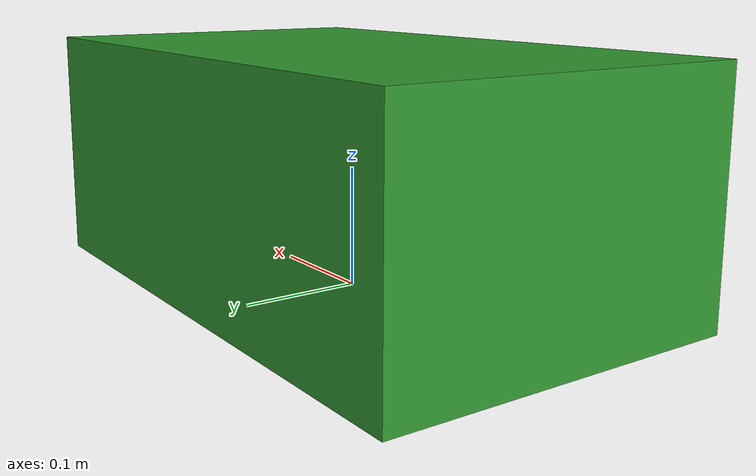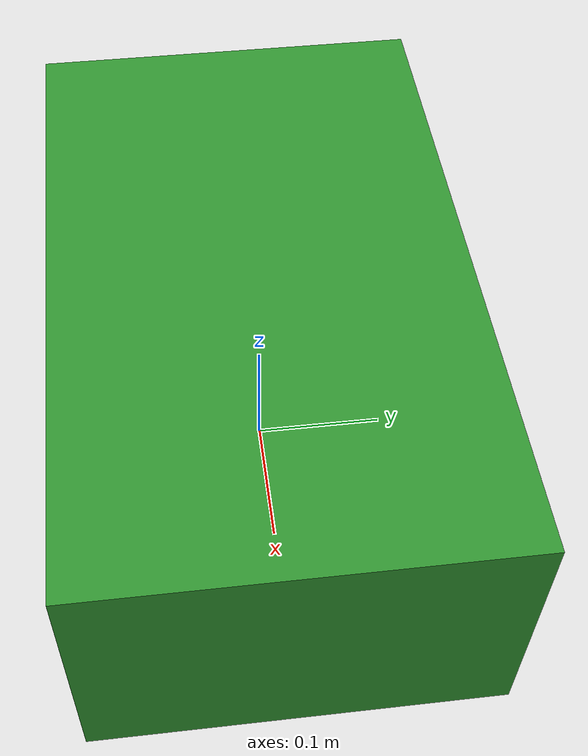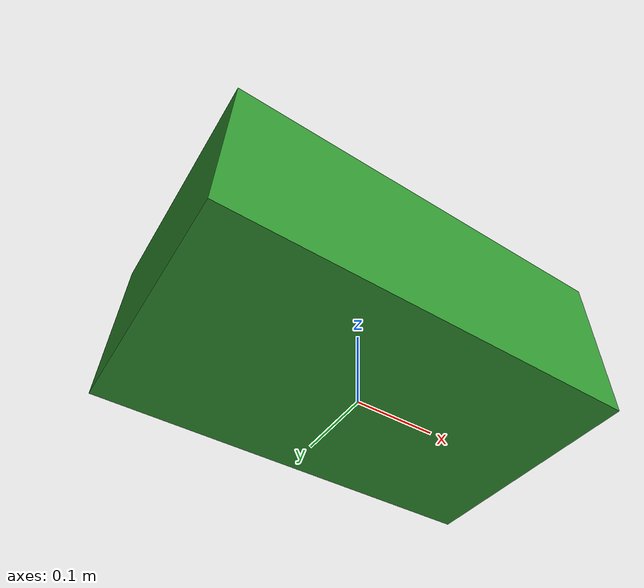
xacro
<?xml version = "1.0"?>

<robot name = "lawnmower" xmlns:xacro = "http://www.ros.org/wiki/xacro">

    <link name = "base_link">

        <visual>

            <origin xyz = "0 0 0.1"/>

            <geometry>
                <box size = "0.5 0.3 0.2"/>
            </geometry>

            <material name = "green">
                <color rgba = "0.2 0.6 0.2 1"/>
            </material>

        </visual>

        <collision>

            <origin xyz = "0 0 0.1"/>

            <geometry>
                <box size = "0.5 0.3 0.2"/>
            </geometry>

        </collision>

        <inertial>
            <mass value = "5.0"/>
            <inertia ixx = "0.05" ixy = "0.0" ixz = "0.0" iyy = "0.08" iyz = "0.0" izz = "0.1"/>
        </inertial>

    </link>
</robot>
